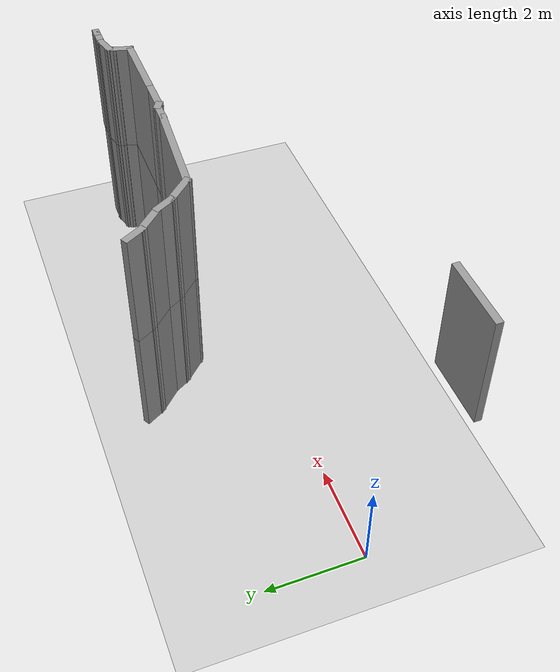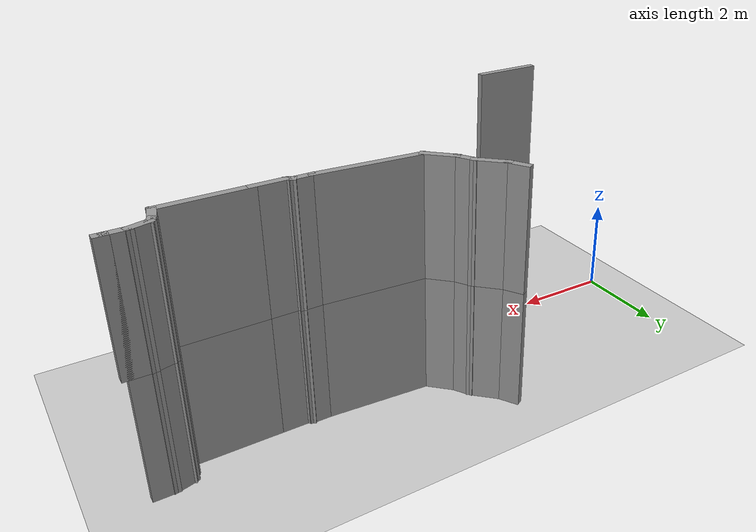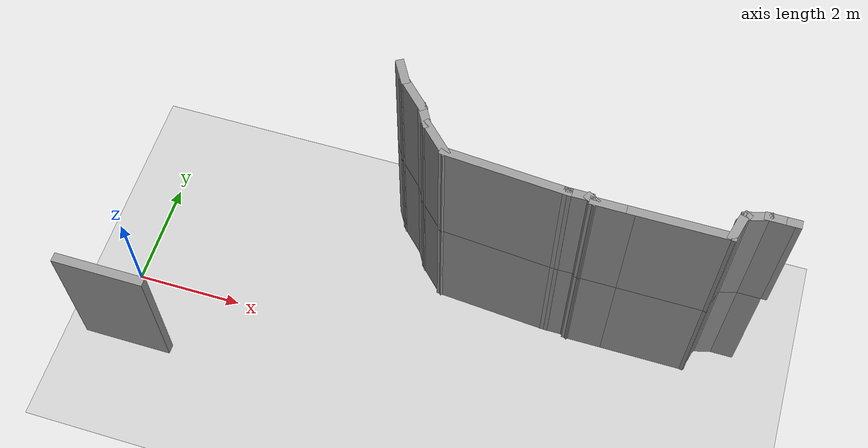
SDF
<sdf version="1.7">
 <world name="default">
  <model name="ground_plane">
   <static>1</static>
   <link name="link">
    <collision name="collision">
     <geometry><plane><normal>0 0 1</normal><size>100 100</size></plane></geometry>
     <surface>
      <contact><collide_bitmask>65535</collide_bitmask></contact>
      <friction><ode><mu>100</mu><mu2>50</mu2></ode></friction>
     </surface>
    </collision>
    <visual name="visual">
     <cast_shadows>0</cast_shadows>
     <geometry><plane><normal>0 0 1</normal><size>100 100</size></plane></geometry>
     <material>
      <script><uri>file://media/materials/scripts/gazebo.material</uri><name>Gazebo/Grey</name></script>
     </material>
    </visual>
   </link>
  </model>
  <model name="EnvDC01">
   <link name="Wall_286">
    <pose>4.70925 7.95684 2.5 0 -0 3.14159</pose>
    <visual name="Wall_286_Visual">
     <pose>0 0 1.25 0 -0 0</pose>
     <geometry><box><size>0.25 0.15 2.5</size></box></geometry>
     <material>
      <script><uri>file://media/materials/scripts/gazebo.material</uri><name>Gazebo/Grey</name></script>
      <ambient>1 1 1 1</ambient>
      <shader type="pixel"/>
     </material>
     <meta><layer>1</layer></meta>
    </visual>
    <collision name="Wall_286_Collision">
     <pose>0 0 1.25 0 -0 0</pose>
     <geometry><box><size>0.25 0.15 2.5</size></box></geometry>
     <surface>
      <friction>
       <ode><mu>1</mu><mu2>1</mu2><fdir1>0 0 0</fdir1><slip1>0</slip1><slip2>0</slip2></ode>
       <torsional>
        <coefficient>1</coefficient>
        <patch_radius>0</patch_radius>
        <surface_radius>0</surface_radius>
        <use_patch_radius>1</use_patch_radius>
        <ode><slip>0</slip></ode>
       </torsional>
      </friction>
      <bounce><restitution_coefficient>0</restitution_coefficient><threshold>1e+06</threshold></bounce>
      <contact>
       <collide_without_contact>0</collide_without_contact>
       <collide_without_contact_bitmask>1</collide_without_contact_bitmask>
       <collide_bitmask>1</collide_bitmask>
       <ode>
        <soft_cfm>0</soft_cfm>
        <soft_erp>0.2</soft_erp>
        <kp>1e+13</kp>
        <kd>1</kd>
        <max_vel>0.01</max_vel>
        <min_depth>0</min_depth>
       </ode>
       <bullet>
        <split_impulse>1</split_impulse>
        <split_impulse_penetration_threshold>-0.01</split_impulse_penetration_threshold>
        <soft_cfm>0</soft_cfm>
        <soft_erp>0.2</soft_erp>
        <kp>1e+13</kp>
        <kd>1</kd>
       </bullet>
      </contact>
     </surface>
    </collision>
   </link>
   <link name="Wall_287">
    <pose>4.48425 7.95684 2.5 0 -0 3.14159</pose>
    <visual name="Wall_287_Visual">
     <pose>0 0 1.25 0 -0 0</pose>
     <geometry><box><size>0.5 0.15 2.5</size></box></geometry>
     <material>
      <script><uri>file://media/materials/scripts/gazebo.material</uri><name>Gazebo/Grey</name></script>
      <ambient>1 1 1 1</ambient>
      <shader type="pixel"/>
     </material>
     <meta><layer>1</layer></meta>
    </visual>
    <collision name="Wall_287_Collision">
     <pose>0 0 1.25 0 -0 0</pose>
     <geometry><box><size>0.5 0.15 2.5</size></box></geometry>
     <surface>
      <friction>
       <ode><mu>1</mu><mu2>1</mu2><fdir1>0 0 0</fdir1><slip1>0</slip1><slip2>0</slip2></ode>
       <torsional>
        <coefficient>1</coefficient>
        <patch_radius>0</patch_radius>
        <surface_radius>0</surface_radius>
        <use_patch_radius>1</use_patch_radius>
        <ode><slip>0</slip></ode>
       </torsional>
      </friction>
      <bounce><restitution_coefficient>0</restitution_coefficient><threshold>1e+06</threshold></bounce>
      <contact>
       <collide_without_contact>0</collide_without_contact>
       <collide_without_contact_bitmask>1</collide_without_contact_bitmask>
       <collide_bitmask>1</collide_bitmask>
       <ode>
        <soft_cfm>0</soft_cfm>
        <soft_erp>0.2</soft_erp>
        <kp>1e+13</kp>
        <kd>1</kd>
        <max_vel>0.01</max_vel>
        <min_depth>0</min_depth>
       </ode>
       <bullet>
        <split_impulse>1</split_impulse>
        <split_impulse_penetration_threshold>-0.01</split_impulse_penetration_threshold>
        <soft_cfm>0</soft_cfm>
        <soft_erp>0.2</soft_erp>
        <kp>1e+13</kp>
        <kd>1</kd>
       </bullet>
      </contact>
     </surface>
    </collision>
   </link>
   <link name="Wall_288">
    <pose>4.14021 7.91155 2.5 0 0 -2.87979</pose>
    <visual name="Wall_288_Visual">
     <pose>0 0 1.25 0 -0 0</pose>
     <geometry><box><size>0.5 0.15 2.5</size></box></geometry>
     <material>
      <script><uri>file://media/materials/scripts/gazebo.material</uri><name>Gazebo/Grey</name></script>
      <ambient>1 1 1 1</ambient>
      <shader type="pixel"/>
     </material>
     <meta><layer>1</layer></meta>
    </visual>
    <collision name="Wall_288_Collision">
     <pose>0 0 1.25 0 -0 0</pose>
     <geometry><box><size>0.5 0.15 2.5</size></box></geometry>
     <surface>
      <friction>
       <ode><mu>1</mu><mu2>1</mu2><fdir1>0 0 0</fdir1><slip1>0</slip1><slip2>0</slip2></ode>
       <torsional>
        <coefficient>1</coefficient>
        <patch_radius>0</patch_radius>
        <surface_radius>0</surface_radius>
        <use_patch_radius>1</use_patch_radius>
        <ode><slip>0</slip></ode>
       </torsional>
      </friction>
      <bounce><restitution_coefficient>0</restitution_coefficient><threshold>1e+06</threshold></bounce>
      <contact>
       <collide_without_contact>0</collide_without_contact>
       <collide_without_contact_bitmask>1</collide_without_contact_bitmask>
       <collide_bitmask>1</collide_bitmask>
       <ode>
        <soft_cfm>0</soft_cfm>
        <soft_erp>0.2</soft_erp>
        <kp>1e+13</kp>
        <kd>1</kd>
        <max_vel>0.01</max_vel>
        <min_depth>0</min_depth>
       </ode>
       <bullet>
        <split_impulse>1</split_impulse>
        <split_impulse_penetration_threshold>-0.01</split_impulse_penetration_threshold>
        <soft_cfm>0</soft_cfm>
        <soft_erp>0.2</soft_erp>
        <kp>1e+13</kp>
        <kd>1</kd>
       </bullet>
      </contact>
     </surface>
    </collision>
   </link>
   <link name="Wall_289">
    <pose>3.94617 7.82295 2.5 0 0 -2.0944</pose>
    <visual name="Wall_289_Visual">
     <pose>0 0 1.25 0 -0 0</pose>
     <geometry><box><size>0.25 0.15 2.5</size></box></geometry>
     <material>
      <script><uri>file://media/materials/scripts/gazebo.material</uri><name>Gazebo/Grey</name></script>
      <ambient>1 1 1 1</ambient>
      <shader type="pixel"/>
     </material>
     <meta><layer>1</layer></meta>
    </visual>
    <collision name="Wall_289_Collision">
     <pose>0 0 1.25 0 -0 0</pose>
     <geometry><box><size>0.25 0.15 2.5</size></box></geometry>
     <surface>
      <friction>
       <ode><mu>1</mu><mu2>1</mu2><fdir1>0 0 0</fdir1><slip1>0</slip1><slip2>0</slip2></ode>
       <torsional>
        <coefficient>1</coefficient>
        <patch_radius>0</patch_radius>
        <surface_radius>0</surface_radius>
        <use_patch_radius>1</use_patch_radius>
        <ode><slip>0</slip></ode>
       </torsional>
      </friction>
      <bounce><restitution_coefficient>0</restitution_coefficient><threshold>1e+06</threshold></bounce>
      <contact>
       <collide_without_contact>0</collide_without_contact>
       <collide_without_contact_bitmask>1</collide_without_contact_bitmask>
       <collide_bitmask>1</collide_bitmask>
       <ode>
        <soft_cfm>0</soft_cfm>
        <soft_erp>0.2</soft_erp>
        <kp>1e+13</kp>
        <kd>1</kd>
        <max_vel>0.01</max_vel>
        <min_depth>0</min_depth>
       </ode>
       <bullet>
        <split_impulse>1</split_impulse>
        <split_impulse_penetration_threshold>-0.01</split_impulse_penetration_threshold>
        <soft_cfm>0</soft_cfm>
        <soft_erp>0.2</soft_erp>
        <kp>1e+13</kp>
        <kd>1</kd>
       </bullet>
      </contact>
     </surface>
    </collision>
   </link>
   <link name="Wall_290">
    <pose>3.87588 7.61061 2.5 0 0 -1.8326</pose>
    <visual name="Wall_290_Visual">
     <pose>0 0 1.25 0 -0 0</pose>
     <geometry><box><size>0.5 0.15 2.5</size></box></geometry>
     <material>
      <script><uri>file://media/materials/scripts/gazebo.material</uri><name>Gazebo/Grey</name></script>
      <ambient>1 1 1 1</ambient>
      <shader type="pixel"/>
     </material>
     <meta><layer>1</layer></meta>
    </visual>
    <collision name="Wall_290_Collision">
     <pose>0 0 1.25 0 -0 0</pose>
     <geometry><box><size>0.5 0.15 2.5</size></box></geometry>
     <surface>
      <friction>
       <ode><mu>1</mu><mu2>1</mu2><fdir1>0 0 0</fdir1><slip1>0</slip1><slip2>0</slip2></ode>
       <torsional>
        <coefficient>1</coefficient>
        <patch_radius>0</patch_radius>
        <surface_radius>0</surface_radius>
        <use_patch_radius>1</use_patch_radius>
        <ode><slip>0</slip></ode>
       </torsional>
      </friction>
      <bounce><restitution_coefficient>0</restitution_coefficient><threshold>1e+06</threshold></bounce>
      <contact>
       <collide_without_contact>0</collide_without_contact>
       <collide_without_contact_bitmask>1</collide_without_contact_bitmask>
       <collide_bitmask>1</collide_bitmask>
       <ode>
        <soft_cfm>0</soft_cfm>
        <soft_erp>0.2</soft_erp>
        <kp>1e+13</kp>
        <kd>1</kd>
        <max_vel>0.01</max_vel>
        <min_depth>0</min_depth>
       </ode>
       <bullet>
        <split_impulse>1</split_impulse>
        <split_impulse_penetration_threshold>-0.01</split_impulse_penetration_threshold>
        <soft_cfm>0</soft_cfm>
        <soft_erp>0.2</soft_erp>
        <kp>1e+13</kp>
        <kd>1</kd>
       </bullet>
      </contact>
     </surface>
    </collision>
   </link>
   <link name="Wall_291">
    <pose>3.03058 7.44158 2.5 0 -0 3.14159</pose>
    <visual name="Wall_291_Visual">
     <pose>0 0 1.25 0 -0 0</pose>
     <geometry><box><size>1.75 0.15 2.5</size></box></geometry>
     <material>
      <script><uri>file://media/materials/scripts/gazebo.material</uri><name>Gazebo/Grey</name></script>
      <ambient>1 1 1 1</ambient>
      <shader type="pixel"/>
     </material>
     <meta><layer>1</layer></meta>
    </visual>
    <collision name="Wall_291_Collision">
     <pose>0 0 1.25 0 -0 0</pose>
     <geometry><box><size>1.75 0.15 2.5</size></box></geometry>
     <surface>
      <friction>
       <ode><mu>1</mu><mu2>1</mu2><fdir1>0 0 0</fdir1><slip1>0</slip1><slip2>0</slip2></ode>
       <torsional>
        <coefficient>1</coefficient>
        <patch_radius>0</patch_radius>
        <surface_radius>0</surface_radius>
        <use_patch_radius>1</use_patch_radius>
        <ode><slip>0</slip></ode>
       </torsional>
      </friction>
      <bounce><restitution_coefficient>0</restitution_coefficient><threshold>1e+06</threshold></bounce>
      <contact>
       <collide_without_contact>0</collide_without_contact>
       <collide_without_contact_bitmask>1</collide_without_contact_bitmask>
       <collide_bitmask>1</collide_bitmask>
       <ode>
        <soft_cfm>0</soft_cfm>
        <soft_erp>0.2</soft_erp>
        <kp>1e+13</kp>
        <kd>1</kd>
        <max_vel>0.01</max_vel>
        <min_depth>0</min_depth>
       </ode>
       <bullet>
        <split_impulse>1</split_impulse>
        <split_impulse_penetration_threshold>-0.01</split_impulse_penetration_threshold>
        <soft_cfm>0</soft_cfm>
        <soft_erp>0.2</soft_erp>
        <kp>1e+13</kp>
        <kd>1</kd>
       </bullet>
      </contact>
     </surface>
    </collision>
   </link>
   <link name="Wall_292">
    <pose>1.93058 7.44158 2.5 0 -0 3.14159</pose>
    <visual name="Wall_292_Visual">
     <pose>0 0 1.25 0 -0 0</pose>
     <geometry><box><size>0.75 0.15 2.5</size></box></geometry>
     <material>
      <script><uri>file://media/materials/scripts/gazebo.material</uri><name>Gazebo/Grey</name></script>
      <ambient>1 1 1 1</ambient>
      <shader type="pixel"/>
     </material>
     <meta><layer>1</layer></meta>
    </visual>
    <collision name="Wall_292_Collision">
     <pose>0 0 1.25 0 -0 0</pose>
     <geometry><box><size>0.75 0.15 2.5</size></box></geometry>
     <surface>
      <friction>
       <ode><mu>1</mu><mu2>1</mu2><fdir1>0 0 0</fdir1><slip1>0</slip1><slip2>0</slip2></ode>
       <torsional>
        <coefficient>1</coefficient>
        <patch_radius>0</patch_radius>
        <surface_radius>0</surface_radius>
        <use_patch_radius>1</use_patch_radius>
        <ode><slip>0</slip></ode>
       </torsional>
      </friction>
      <bounce><restitution_coefficient>0</restitution_coefficient><threshold>1e+06</threshold></bounce>
      <contact>
       <collide_without_contact>0</collide_without_contact>
       <collide_without_contact_bitmask>1</collide_without_contact_bitmask>
       <collide_bitmask>1</collide_bitmask>
       <ode>
        <soft_cfm>0</soft_cfm>
        <soft_erp>0.2</soft_erp>
        <kp>1e+13</kp>
        <kd>1</kd>
        <max_vel>0.01</max_vel>
        <min_depth>0</min_depth>
       </ode>
       <bullet>
        <split_impulse>1</split_impulse>
        <split_impulse_penetration_threshold>-0.01</split_impulse_penetration_threshold>
        <soft_cfm>0</soft_cfm>
        <soft_erp>0.2</soft_erp>
        <kp>1e+13</kp>
        <kd>1</kd>
       </bullet>
      </contact>
     </surface>
    </collision>
   </link>
   <link name="Wall_293">
    <pose>1.58728 7.46658 2.5 0 -0 2.61799</pose>
    <visual name="Wall_293_Visual">
     <pose>0 0 1.25 0 -0 0</pose>
     <geometry><box><size>0.25 0.15 2.5</size></box></geometry>
     <material>
      <script><uri>file://media/materials/scripts/gazebo.material</uri><name>Gazebo/Grey</name></script>
      <ambient>1 1 1 1</ambient>
      <shader type="pixel"/>
     </material>
     <meta><layer>1</layer></meta>
    </visual>
    <collision name="Wall_293_Collision">
     <pose>0 0 1.25 0 -0 0</pose>
     <geometry><box><size>0.25 0.15 2.5</size></box></geometry>
     <surface>
      <friction>
       <ode><mu>1</mu><mu2>1</mu2><fdir1>0 0 0</fdir1><slip1>0</slip1><slip2>0</slip2></ode>
       <torsional>
        <coefficient>1</coefficient>
        <patch_radius>0</patch_radius>
        <surface_radius>0</surface_radius>
        <use_patch_radius>1</use_patch_radius>
        <ode><slip>0</slip></ode>
       </torsional>
      </friction>
      <bounce><restitution_coefficient>0</restitution_coefficient><threshold>1e+06</threshold></bounce>
      <contact>
       <collide_without_contact>0</collide_without_contact>
       <collide_without_contact_bitmask>1</collide_without_contact_bitmask>
       <collide_bitmask>1</collide_bitmask>
       <ode>
        <soft_cfm>0</soft_cfm>
        <soft_erp>0.2</soft_erp>
        <kp>1e+13</kp>
        <kd>1</kd>
        <max_vel>0.01</max_vel>
        <min_depth>0</min_depth>
       </ode>
       <bullet>
        <split_impulse>1</split_impulse>
        <split_impulse_penetration_threshold>-0.01</split_impulse_penetration_threshold>
        <soft_cfm>0</soft_cfm>
        <soft_erp>0.2</soft_erp>
        <kp>1e+13</kp>
        <kd>1</kd>
       </bullet>
      </contact>
     </surface>
    </collision>
   </link>
   <link name="Wall_294">
    <pose>1.36898 7.49158 2.5 0 -0 3.14159</pose>
    <visual name="Wall_294_Visual">
     <pose>0 0 1.25 0 -0 0</pose>
     <geometry><box><size>0.5 0.15 2.5</size></box></geometry>
     <material>
      <script><uri>file://media/materials/scripts/gazebo.material</uri><name>Gazebo/Grey</name></script>
      <ambient>1 1 1 1</ambient>
      <shader type="pixel"/>
     </material>
     <meta><layer>1</layer></meta>
    </visual>
    <collision name="Wall_294_Collision">
     <pose>0 0 1.25 0 -0 0</pose>
     <geometry><box><size>0.5 0.15 2.5</size></box></geometry>
     <surface>
      <friction>
       <ode><mu>1</mu><mu2>1</mu2><fdir1>0 0 0</fdir1><slip1>0</slip1><slip2>0</slip2></ode>
       <torsional>
        <coefficient>1</coefficient>
        <patch_radius>0</patch_radius>
        <surface_radius>0</surface_radius>
        <use_patch_radius>1</use_patch_radius>
        <ode><slip>0</slip></ode>
       </torsional>
      </friction>
      <bounce><restitution_coefficient>0</restitution_coefficient><threshold>1e+06</threshold></bounce>
      <contact>
       <collide_without_contact>0</collide_without_contact>
       <collide_without_contact_bitmask>1</collide_without_contact_bitmask>
       <collide_bitmask>1</collide_bitmask>
       <ode>
        <soft_cfm>0</soft_cfm>
        <soft_erp>0.2</soft_erp>
        <kp>1e+13</kp>
        <kd>1</kd>
        <max_vel>0.01</max_vel>
        <min_depth>0</min_depth>
       </ode>
       <bullet>
        <split_impulse>1</split_impulse>
        <split_impulse_penetration_threshold>-0.01</split_impulse_penetration_threshold>
        <soft_cfm>0</soft_cfm>
        <soft_erp>0.2</soft_erp>
        <kp>1e+13</kp>
        <kd>1</kd>
       </bullet>
      </contact>
     </surface>
    </collision>
   </link>
   <link name="Wall_295">
    <pose>0.154204 7.56922 2.5 0 -0 3.06706</pose>
    <visual name="Wall_295_Visual">
     <pose>0 0 1.25 0 -0 0</pose>
     <geometry><box><size>2.23535 0.15 2.5</size></box></geometry>
     <material>
      <script><uri>file://media/materials/scripts/gazebo.material</uri><name>Gazebo/Grey</name></script>
      <ambient>1 1 1 1</ambient>
      <shader type="pixel"/>
     </material>
     <meta><layer>1</layer></meta>
    </visual>
    <collision name="Wall_295_Collision">
     <pose>0 0 1.25 0 -0 0</pose>
     <geometry><box><size>2.23535 0.15 2.5</size></box></geometry>
     <surface>
      <friction>
       <ode><mu>1</mu><mu2>1</mu2><fdir1>0 0 0</fdir1><slip1>0</slip1><slip2>0</slip2></ode>
       <torsional>
        <coefficient>1</coefficient>
        <patch_radius>0</patch_radius>
        <surface_radius>0</surface_radius>
        <use_patch_radius>1</use_patch_radius>
        <ode><slip>0</slip></ode>
       </torsional>
      </friction>
      <bounce><restitution_coefficient>0</restitution_coefficient><threshold>1e+06</threshold></bounce>
      <contact>
       <collide_without_contact>0</collide_without_contact>
       <collide_without_contact_bitmask>1</collide_without_contact_bitmask>
       <collide_bitmask>1</collide_bitmask>
       <ode>
        <soft_cfm>0</soft_cfm>
        <soft_erp>0.2</soft_erp>
        <kp>1e+13</kp>
        <kd>1</kd>
        <max_vel>0.01</max_vel>
        <min_depth>0</min_depth>
       </ode>
       <bullet>
        <split_impulse>1</split_impulse>
        <split_impulse_penetration_threshold>-0.01</split_impulse_penetration_threshold>
        <soft_cfm>0</soft_cfm>
        <soft_erp>0.2</soft_erp>
        <kp>1e+13</kp>
        <kd>1</kd>
       </bullet>
      </contact>
     </surface>
    </collision>
   </link>
   <link name="Wall_296">
    <pose>-1.09771 7.859 2.5 0 -0 2.35619</pose>
    <visual name="Wall_296_Visual">
     <pose>0 0 1.25 0 -0 0</pose>
     <geometry><box><size>0.75 0.15 2.5</size></box></geometry>
     <material>
      <script><uri>file://media/materials/scripts/gazebo.material</uri><name>Gazebo/Grey</name></script>
      <ambient>1 1 1 1</ambient>
      <shader type="pixel"/>
     </material>
     <meta><layer>1</layer></meta>
    </visual>
    <collision name="Wall_296_Collision">
     <pose>0 0 1.25 0 -0 0</pose>
     <geometry><box><size>0.75 0.15 2.5</size></box></geometry>
     <surface>
      <friction>
       <ode><mu>1</mu><mu2>1</mu2><fdir1>0 0 0</fdir1><slip1>0</slip1><slip2>0</slip2></ode>
       <torsional>
        <coefficient>1</coefficient>
        <patch_radius>0</patch_radius>
        <surface_radius>0</surface_radius>
        <use_patch_radius>1</use_patch_radius>
        <ode><slip>0</slip></ode>
       </torsional>
      </friction>
      <bounce><restitution_coefficient>0</restitution_coefficient><threshold>1e+06</threshold></bounce>
      <contact>
       <collide_without_contact>0</collide_without_contact>
       <collide_without_contact_bitmask>1</collide_without_contact_bitmask>
       <collide_bitmask>1</collide_bitmask>
       <ode>
        <soft_cfm>0</soft_cfm>
        <soft_erp>0.2</soft_erp>
        <kp>1e+13</kp>
        <kd>1</kd>
        <max_vel>0.01</max_vel>
        <min_depth>0</min_depth>
       </ode>
       <bullet>
        <split_impulse>1</split_impulse>
        <split_impulse_penetration_threshold>-0.01</split_impulse_penetration_threshold>
        <soft_cfm>0</soft_cfm>
        <soft_erp>0.2</soft_erp>
        <kp>1e+13</kp>
        <kd>1</kd>
       </bullet>
      </contact>
     </surface>
    </collision>
   </link>
   <link name="Wall_297">
    <pose>-1.39734 8.22269 2.5 0 -0 2.0944</pose>
    <visual name="Wall_297_Visual">
     <pose>0 0 1.25 0 -0 0</pose>
     <geometry><box><size>0.5 0.15 2.5</size></box></geometry>
     <material>
      <script><uri>file://media/materials/scripts/gazebo.material</uri><name>Gazebo/Grey</name></script>
      <ambient>1 1 1 1</ambient>
      <shader type="pixel"/>
     </material>
     <meta><layer>1</layer></meta>
    </visual>
    <collision name="Wall_297_Collision">
     <pose>0 0 1.25 0 -0 0</pose>
     <geometry><box><size>0.5 0.15 2.5</size></box></geometry>
     <surface>
      <friction>
       <ode><mu>1</mu><mu2>1</mu2><fdir1>0 0 0</fdir1><slip1>0</slip1><slip2>0</slip2></ode>
       <torsional>
        <coefficient>1</coefficient>
        <patch_radius>0</patch_radius>
        <surface_radius>0</surface_radius>
        <use_patch_radius>1</use_patch_radius>
        <ode><slip>0</slip></ode>
       </torsional>
      </friction>
      <bounce><restitution_coefficient>0</restitution_coefficient><threshold>1e+06</threshold></bounce>
      <contact>
       <collide_without_contact>0</collide_without_contact>
       <collide_without_contact_bitmask>1</collide_without_contact_bitmask>
       <collide_bitmask>1</collide_bitmask>
       <ode>
        <soft_cfm>0</soft_cfm>
        <soft_erp>0.2</soft_erp>
        <kp>1e+13</kp>
        <kd>1</kd>
        <max_vel>0.01</max_vel>
        <min_depth>0</min_depth>
       </ode>
       <bullet>
        <split_impulse>1</split_impulse>
        <split_impulse_penetration_threshold>-0.01</split_impulse_penetration_threshold>
        <soft_cfm>0</soft_cfm>
        <soft_erp>0.2</soft_erp>
        <kp>1e+13</kp>
        <kd>1</kd>
       </bullet>
      </contact>
     </surface>
    </collision>
   </link>
   <link name="Wall_298">
    <pose>-1.69697 8.58637 2.5 0 -0 2.35619</pose>
    <visual name="Wall_298_Visual">
     <pose>0 0 1.25 0 -0 0</pose>
     <geometry><box><size>0.75 0.15 2.5</size></box></geometry>
     <material>
      <script><uri>file://media/materials/scripts/gazebo.material</uri><name>Gazebo/Grey</name></script>
      <ambient>1 1 1 1</ambient>
      <shader type="pixel"/>
     </material>
     <meta><layer>1</layer></meta>
    </visual>
    <collision name="Wall_298_Collision">
     <pose>0 0 1.25 0 -0 0</pose>
     <geometry><box><size>0.75 0.15 2.5</size></box></geometry>
     <surface>
      <friction>
       <ode><mu>1</mu><mu2>1</mu2><fdir1>0 0 0</fdir1><slip1>0</slip1><slip2>0</slip2></ode>
       <torsional>
        <coefficient>1</coefficient>
        <patch_radius>0</patch_radius>
        <surface_radius>0</surface_radius>
        <use_patch_radius>1</use_patch_radius>
        <ode><slip>0</slip></ode>
       </torsional>
      </friction>
      <bounce><restitution_coefficient>0</restitution_coefficient><threshold>1e+06</threshold></bounce>
      <contact>
       <collide_without_contact>0</collide_without_contact>
       <collide_without_contact_bitmask>1</collide_without_contact_bitmask>
       <collide_bitmask>1</collide_bitmask>
       <ode>
        <soft_cfm>0</soft_cfm>
        <soft_erp>0.2</soft_erp>
        <kp>1e+13</kp>
        <kd>1</kd>
        <max_vel>0.01</max_vel>
        <min_depth>0</min_depth>
       </ode>
       <bullet>
        <split_impulse>1</split_impulse>
        <split_impulse_penetration_threshold>-0.01</split_impulse_penetration_threshold>
        <soft_cfm>0</soft_cfm>
        <soft_erp>0.2</soft_erp>
        <kp>1e+13</kp>
        <kd>1</kd>
       </bullet>
      </contact>
     </surface>
    </collision>
   </link>
   <link name="Wall_299">
    <pose>-1.9966 8.95006 2.5 0 -0 2.0944</pose>
    <visual name="Wall_299_Visual">
     <pose>0 0 1.25 0 -0 0</pose>
     <geometry><box><size>0.5 0.15 2.5</size></box></geometry>
     <material>
      <script><uri>file://media/materials/scripts/gazebo.material</uri><name>Gazebo/Grey</name></script>
      <ambient>1 1 1 1</ambient>
      <shader type="pixel"/>
     </material>
     <meta><layer>1</layer></meta>
    </visual>
    <collision name="Wall_299_Collision">
     <pose>0 0 1.25 0 -0 0</pose>
     <geometry><box><size>0.5 0.15 2.5</size></box></geometry>
     <surface>
      <friction>
       <ode><mu>1</mu><mu2>1</mu2><fdir1>0 0 0</fdir1><slip1>0</slip1><slip2>0</slip2></ode>
       <torsional>
        <coefficient>1</coefficient>
        <patch_radius>0</patch_radius>
        <surface_radius>0</surface_radius>
        <use_patch_radius>1</use_patch_radius>
        <ode><slip>0</slip></ode>
       </torsional>
      </friction>
      <bounce><restitution_coefficient>0</restitution_coefficient><threshold>1e+06</threshold></bounce>
      <contact>
       <collide_without_contact>0</collide_without_contact>
       <collide_without_contact_bitmask>1</collide_without_contact_bitmask>
       <collide_bitmask>1</collide_bitmask>
       <ode>
        <soft_cfm>0</soft_cfm>
        <soft_erp>0.2</soft_erp>
        <kp>1e+13</kp>
        <kd>1</kd>
        <max_vel>0.01</max_vel>
        <min_depth>0</min_depth>
       </ode>
       <bullet>
        <split_impulse>1</split_impulse>
        <split_impulse_penetration_threshold>-0.01</split_impulse_penetration_threshold>
        <soft_cfm>0</soft_cfm>
        <soft_erp>0.2</soft_erp>
        <kp>1e+13</kp>
        <kd>1</kd>
       </bullet>
      </contact>
     </surface>
    </collision>
   </link>
   <link name="Wall_355">
    <pose>-5.33682 4.06947 2.5 0 -0 3.14159</pose>
    <visual name="Wall_355_Visual">
     <pose>0 0 1.25 0 -0 0</pose>
     <geometry><box><size>1.5 0.15 2.5</size></box></geometry>
     <material>
      <script><uri>file://media/materials/scripts/gazebo.material</uri><name>Gazebo/Grey</name></script>
      <ambient>1 1 1 1</ambient>
      <shader type="pixel"/>
     </material>
     <meta><layer>1</layer></meta>
    </visual>
    <collision name="Wall_355_Collision">
     <pose>0 0 1.25 0 -0 0</pose>
     <geometry><box><size>1.5 0.15 2.5</size></box></geometry>
     <surface>
      <friction>
       <ode><mu>1</mu><mu2>1</mu2><fdir1>0 0 0</fdir1><slip1>0</slip1><slip2>0</slip2></ode>
       <torsional>
        <coefficient>1</coefficient>
        <patch_radius>0</patch_radius>
        <surface_radius>0</surface_radius>
        <use_patch_radius>1</use_patch_radius>
        <ode><slip>0</slip></ode>
       </torsional>
      </friction>
      <bounce><restitution_coefficient>0</restitution_coefficient><threshold>1e+06</threshold></bounce>
      <contact>
       <collide_without_contact>0</collide_without_contact>
       <collide_without_contact_bitmask>1</collide_without_contact_bitmask>
       <collide_bitmask>1</collide_bitmask>
       <ode>
        <soft_cfm>0</soft_cfm>
        <soft_erp>0.2</soft_erp>
        <kp>1e+13</kp>
        <kd>1</kd>
        <max_vel>0.01</max_vel>
        <min_depth>0</min_depth>
       </ode>
       <bullet>
        <split_impulse>1</split_impulse>
        <split_impulse_penetration_threshold>-0.01</split_impulse_penetration_threshold>
        <soft_cfm>0</soft_cfm>
        <soft_erp>0.2</soft_erp>
        <kp>1e+13</kp>
        <kd>1</kd>
       </bullet>
      </contact>
     </surface>
    </collision>
   </link>
   <link name="Wall_75">
    <pose>4.48424 7.95684 0 0 -0 3.14159</pose>
    <visual name="Wall_75_Visual">
     <pose>0 0 1.25 0 -0 0</pose>
     <geometry><box><size>0.5 0.15 2.5</size></box></geometry>
     <material>
      <script><uri>file://media/materials/scripts/gazebo.material</uri><name>Gazebo/Grey</name></script>
      <ambient>1 1 1 1</ambient>
      <shader type="pixel"/>
     </material>
     <meta><layer>0</layer></meta>
    </visual>
    <collision name="Wall_75_Collision">
     <pose>0 0 1.25 0 -0 0</pose>
     <geometry><box><size>0.5 0.15 2.5</size></box></geometry>
     <surface>
      <friction>
       <ode><mu>1</mu><mu2>1</mu2><fdir1>0 0 0</fdir1><slip1>0</slip1><slip2>0</slip2></ode>
       <torsional>
        <coefficient>1</coefficient>
        <patch_radius>0</patch_radius>
        <surface_radius>0</surface_radius>
        <use_patch_radius>1</use_patch_radius>
        <ode><slip>0</slip></ode>
       </torsional>
      </friction>
      <bounce><restitution_coefficient>0</restitution_coefficient><threshold>1e+06</threshold></bounce>
      <contact>
       <collide_without_contact>0</collide_without_contact>
       <collide_without_contact_bitmask>1</collide_without_contact_bitmask>
       <collide_bitmask>1</collide_bitmask>
       <ode>
        <soft_cfm>0</soft_cfm>
        <soft_erp>0.2</soft_erp>
        <kp>1e+13</kp>
        <kd>1</kd>
        <max_vel>0.01</max_vel>
        <min_depth>0</min_depth>
       </ode>
       <bullet>
        <split_impulse>1</split_impulse>
        <split_impulse_penetration_threshold>-0.01</split_impulse_penetration_threshold>
        <soft_cfm>0</soft_cfm>
        <soft_erp>0.2</soft_erp>
        <kp>1e+13</kp>
        <kd>1</kd>
       </bullet>
      </contact>
     </surface>
    </collision>
   </link>
   <link name="Wall_76">
    <pose>4.14021 7.91155 0 0 0 -2.87979</pose>
    <visual name="Wall_76_Visual">
     <pose>0 0 1.25 0 -0 0</pose>
     <geometry><box><size>0.5 0.15 2.5</size></box></geometry>
     <material>
      <script><uri>file://media/materials/scripts/gazebo.material</uri><name>Gazebo/Grey</name></script>
      <ambient>1 1 1 1</ambient>
      <shader type="pixel"/>
     </material>
     <meta><layer>0</layer></meta>
    </visual>
    <collision name="Wall_76_Collision">
     <pose>0 0 1.25 0 -0 0</pose>
     <geometry><box><size>0.5 0.15 2.5</size></box></geometry>
     <surface>
      <friction>
       <ode><mu>1</mu><mu2>1</mu2><fdir1>0 0 0</fdir1><slip1>0</slip1><slip2>0</slip2></ode>
       <torsional>
        <coefficient>1</coefficient>
        <patch_radius>0</patch_radius>
        <surface_radius>0</surface_radius>
        <use_patch_radius>1</use_patch_radius>
        <ode><slip>0</slip></ode>
       </torsional>
      </friction>
      <bounce><restitution_coefficient>0</restitution_coefficient><threshold>1e+06</threshold></bounce>
      <contact>
       <collide_without_contact>0</collide_without_contact>
       <collide_without_contact_bitmask>1</collide_without_contact_bitmask>
       <collide_bitmask>1</collide_bitmask>
       <ode>
        <soft_cfm>0</soft_cfm>
        <soft_erp>0.2</soft_erp>
        <kp>1e+13</kp>
        <kd>1</kd>
        <max_vel>0.01</max_vel>
        <min_depth>0</min_depth>
       </ode>
       <bullet>
        <split_impulse>1</split_impulse>
        <split_impulse_penetration_threshold>-0.01</split_impulse_penetration_threshold>
        <soft_cfm>0</soft_cfm>
        <soft_erp>0.2</soft_erp>
        <kp>1e+13</kp>
        <kd>1</kd>
       </bullet>
      </contact>
     </surface>
    </collision>
   </link>
   <link name="Wall_77">
    <pose>3.94617 7.82295 0 0 0 -2.0944</pose>
    <visual name="Wall_77_Visual">
     <pose>0 0 1.25 0 -0 0</pose>
     <geometry><box><size>0.25 0.15 2.5</size></box></geometry>
     <material>
      <script><uri>file://media/materials/scripts/gazebo.material</uri><name>Gazebo/Grey</name></script>
      <ambient>1 1 1 1</ambient>
      <shader type="pixel"/>
     </material>
     <meta><layer>0</layer></meta>
    </visual>
    <collision name="Wall_77_Collision">
     <pose>0 0 1.25 0 -0 0</pose>
     <geometry><box><size>0.25 0.15 2.5</size></box></geometry>
     <surface>
      <friction>
       <ode><mu>1</mu><mu2>1</mu2><fdir1>0 0 0</fdir1><slip1>0</slip1><slip2>0</slip2></ode>
       <torsional>
        <coefficient>1</coefficient>
        <patch_radius>0</patch_radius>
        <surface_radius>0</surface_radius>
        <use_patch_radius>1</use_patch_radius>
        <ode><slip>0</slip></ode>
       </torsional>
      </friction>
      <bounce><restitution_coefficient>0</restitution_coefficient><threshold>1e+06</threshold></bounce>
      <contact>
       <collide_without_contact>0</collide_without_contact>
       <collide_without_contact_bitmask>1</collide_without_contact_bitmask>
       <collide_bitmask>1</collide_bitmask>
       <ode>
        <soft_cfm>0</soft_cfm>
        <soft_erp>0.2</soft_erp>
        <kp>1e+13</kp>
        <kd>1</kd>
        <max_vel>0.01</max_vel>
        <min_depth>0</min_depth>
       </ode>
       <bullet>
        <split_impulse>1</split_impulse>
        <split_impulse_penetration_threshold>-0.01</split_impulse_penetration_threshold>
        <soft_cfm>0</soft_cfm>
        <soft_erp>0.2</soft_erp>
        <kp>1e+13</kp>
        <kd>1</kd>
       </bullet>
      </contact>
     </surface>
    </collision>
   </link>
   <link name="Wall_78">
    <pose>3.87588 7.61061 0 0 0 -1.8326</pose>
    <visual name="Wall_78_Visual">
     <pose>0 0 1.25 0 -0 0</pose>
     <geometry><box><size>0.5 0.15 2.5</size></box></geometry>
     <material>
      <script><uri>file://media/materials/scripts/gazebo.material</uri><name>Gazebo/Grey</name></script>
      <ambient>1 1 1 1</ambient>
      <shader type="pixel"/>
     </material>
     <meta><layer>0</layer></meta>
    </visual>
    <collision name="Wall_78_Collision">
     <pose>0 0 1.25 0 -0 0</pose>
     <geometry><box><size>0.5 0.15 2.5</size></box></geometry>
     <surface>
      <friction>
       <ode><mu>1</mu><mu2>1</mu2><fdir1>0 0 0</fdir1><slip1>0</slip1><slip2>0</slip2></ode>
       <torsional>
        <coefficient>1</coefficient>
        <patch_radius>0</patch_radius>
        <surface_radius>0</surface_radius>
        <use_patch_radius>1</use_patch_radius>
        <ode><slip>0</slip></ode>
       </torsional>
      </friction>
      <bounce><restitution_coefficient>0</restitution_coefficient><threshold>1e+06</threshold></bounce>
      <contact>
       <collide_without_contact>0</collide_without_contact>
       <collide_without_contact_bitmask>1</collide_without_contact_bitmask>
       <collide_bitmask>1</collide_bitmask>
       <ode>
        <soft_cfm>0</soft_cfm>
        <soft_erp>0.2</soft_erp>
        <kp>1e+13</kp>
        <kd>1</kd>
        <max_vel>0.01</max_vel>
        <min_depth>0</min_depth>
       </ode>
       <bullet>
        <split_impulse>1</split_impulse>
        <split_impulse_penetration_threshold>-0.01</split_impulse_penetration_threshold>
        <soft_cfm>0</soft_cfm>
        <soft_erp>0.2</soft_erp>
        <kp>1e+13</kp>
        <kd>1</kd>
       </bullet>
      </contact>
     </surface>
    </collision>
   </link>
   <link name="Wall_79">
    <pose>3.03058 7.44158 0 0 -0 3.14159</pose>
    <visual name="Wall_79_Visual">
     <pose>0 0 1.25 0 -0 0</pose>
     <geometry><box><size>1.75 0.15 2.5</size></box></geometry>
     <material>
      <script><uri>file://media/materials/scripts/gazebo.material</uri><name>Gazebo/Grey</name></script>
      <ambient>1 1 1 1</ambient>
      <shader type="pixel"/>
     </material>
     <meta><layer>0</layer></meta>
    </visual>
    <collision name="Wall_79_Collision">
     <pose>0 0 1.25 0 -0 0</pose>
     <geometry><box><size>1.75 0.15 2.5</size></box></geometry>
     <surface>
      <friction>
       <ode><mu>1</mu><mu2>1</mu2><fdir1>0 0 0</fdir1><slip1>0</slip1><slip2>0</slip2></ode>
       <torsional>
        <coefficient>1</coefficient>
        <patch_radius>0</patch_radius>
        <surface_radius>0</surface_radius>
        <use_patch_radius>1</use_patch_radius>
        <ode><slip>0</slip></ode>
       </torsional>
      </friction>
      <bounce><restitution_coefficient>0</restitution_coefficient><threshold>1e+06</threshold></bounce>
      <contact>
       <collide_without_contact>0</collide_without_contact>
       <collide_without_contact_bitmask>1</collide_without_contact_bitmask>
       <collide_bitmask>1</collide_bitmask>
       <ode>
        <soft_cfm>0</soft_cfm>
        <soft_erp>0.2</soft_erp>
        <kp>1e+13</kp>
        <kd>1</kd>
        <max_vel>0.01</max_vel>
        <min_depth>0</min_depth>
       </ode>
       <bullet>
        <split_impulse>1</split_impulse>
        <split_impulse_penetration_threshold>-0.01</split_impulse_penetration_threshold>
        <soft_cfm>0</soft_cfm>
        <soft_erp>0.2</soft_erp>
        <kp>1e+13</kp>
        <kd>1</kd>
       </bullet>
      </contact>
     </surface>
    </collision>
   </link>
   <link name="Wall_80">
    <pose>1.93058 7.44158 0 0 -0 3.14159</pose>
    <visual name="Wall_80_Visual">
     <pose>0 0 1.25 0 -0 0</pose>
     <geometry><box><size>0.75 0.15 2.5</size></box></geometry>
     <material>
      <script><uri>file://media/materials/scripts/gazebo.material</uri><name>Gazebo/Grey</name></script>
      <ambient>1 1 1 1</ambient>
      <shader type="pixel"/>
     </material>
     <meta><layer>0</layer></meta>
    </visual>
    <collision name="Wall_80_Collision">
     <pose>0 0 1.25 0 -0 0</pose>
     <geometry><box><size>0.75 0.15 2.5</size></box></geometry>
     <surface>
      <friction>
       <ode><mu>1</mu><mu2>1</mu2><fdir1>0 0 0</fdir1><slip1>0</slip1><slip2>0</slip2></ode>
       <torsional>
        <coefficient>1</coefficient>
        <patch_radius>0</patch_radius>
        <surface_radius>0</surface_radius>
        <use_patch_radius>1</use_patch_radius>
        <ode><slip>0</slip></ode>
       </torsional>
      </friction>
      <bounce><restitution_coefficient>0</restitution_coefficient><threshold>1e+06</threshold></bounce>
      <contact>
       <collide_without_contact>0</collide_without_contact>
       <collide_without_contact_bitmask>1</collide_without_contact_bitmask>
       <collide_bitmask>1</collide_bitmask>
       <ode>
        <soft_cfm>0</soft_cfm>
        <soft_erp>0.2</soft_erp>
        <kp>1e+13</kp>
        <kd>1</kd>
        <max_vel>0.01</max_vel>
        <min_depth>0</min_depth>
       </ode>
       <bullet>
        <split_impulse>1</split_impulse>
        <split_impulse_penetration_threshold>-0.01</split_impulse_penetration_threshold>
        <soft_cfm>0</soft_cfm>
        <soft_erp>0.2</soft_erp>
        <kp>1e+13</kp>
        <kd>1</kd>
       </bullet>
      </contact>
     </surface>
    </collision>
   </link>
   <link name="Wall_82">
    <pose>1.58728 7.46658 0 0 -0 2.61799</pose>
    <visual name="Wall_82_Visual">
     <pose>0 0 1.25 0 -0 0</pose>
     <geometry><box><size>0.25 0.15 2.5</size></box></geometry>
     <material>
      <script><uri>file://media/materials/scripts/gazebo.material</uri><name>Gazebo/Grey</name></script>
      <ambient>1 1 1 1</ambient>
      <shader type="pixel"/>
     </material>
     <meta><layer>0</layer></meta>
    </visual>
    <collision name="Wall_82_Collision">
     <pose>0 0 1.25 0 -0 0</pose>
     <geometry><box><size>0.25 0.15 2.5</size></box></geometry>
     <surface>
      <friction>
       <ode><mu>1</mu><mu2>1</mu2><fdir1>0 0 0</fdir1><slip1>0</slip1><slip2>0</slip2></ode>
       <torsional>
        <coefficient>1</coefficient>
        <patch_radius>0</patch_radius>
        <surface_radius>0</surface_radius>
        <use_patch_radius>1</use_patch_radius>
        <ode><slip>0</slip></ode>
       </torsional>
      </friction>
      <bounce><restitution_coefficient>0</restitution_coefficient><threshold>1e+06</threshold></bounce>
      <contact>
       <collide_without_contact>0</collide_without_contact>
       <collide_without_contact_bitmask>1</collide_without_contact_bitmask>
       <collide_bitmask>1</collide_bitmask>
       <ode>
        <soft_cfm>0</soft_cfm>
        <soft_erp>0.2</soft_erp>
        <kp>1e+13</kp>
        <kd>1</kd>
        <max_vel>0.01</max_vel>
        <min_depth>0</min_depth>
       </ode>
       <bullet>
        <split_impulse>1</split_impulse>
        <split_impulse_penetration_threshold>-0.01</split_impulse_penetration_threshold>
        <soft_cfm>0</soft_cfm>
        <soft_erp>0.2</soft_erp>
        <kp>1e+13</kp>
        <kd>1</kd>
       </bullet>
      </contact>
     </surface>
    </collision>
   </link>
   <link name="Wall_83">
    <pose>1.36898 7.49158 0 0 -0 3.14159</pose>
    <visual name="Wall_83_Visual">
     <pose>0 0 1.25 0 -0 0</pose>
     <geometry><box><size>0.5 0.15 2.5</size></box></geometry>
     <material>
      <script><uri>file://media/materials/scripts/gazebo.material</uri><name>Gazebo/Grey</name></script>
      <ambient>1 1 1 1</ambient>
      <shader type="pixel"/>
     </material>
     <meta><layer>0</layer></meta>
    </visual>
    <collision name="Wall_83_Collision">
     <pose>0 0 1.25 0 -0 0</pose>
     <geometry><box><size>0.5 0.15 2.5</size></box></geometry>
     <surface>
      <friction>
       <ode><mu>1</mu><mu2>1</mu2><fdir1>0 0 0</fdir1><slip1>0</slip1><slip2>0</slip2></ode>
       <torsional>
        <coefficient>1</coefficient>
        <patch_radius>0</patch_radius>
        <surface_radius>0</surface_radius>
        <use_patch_radius>1</use_patch_radius>
        <ode><slip>0</slip></ode>
       </torsional>
      </friction>
      <bounce><restitution_coefficient>0</restitution_coefficient><threshold>1e+06</threshold></bounce>
      <contact>
       <collide_without_contact>0</collide_without_contact>
       <collide_without_contact_bitmask>1</collide_without_contact_bitmask>
       <collide_bitmask>1</collide_bitmask>
       <ode>
        <soft_cfm>0</soft_cfm>
        <soft_erp>0.2</soft_erp>
        <kp>1e+13</kp>
        <kd>1</kd>
        <max_vel>0.01</max_vel>
        <min_depth>0</min_depth>
       </ode>
       <bullet>
        <split_impulse>1</split_impulse>
        <split_impulse_penetration_threshold>-0.01</split_impulse_penetration_threshold>
        <soft_cfm>0</soft_cfm>
        <soft_erp>0.2</soft_erp>
        <kp>1e+13</kp>
        <kd>1</kd>
       </bullet>
      </contact>
     </surface>
    </collision>
   </link>
   <link name="Wall_84">
    <pose>0.154204 7.56922 0 0 -0 3.06706</pose>
    <visual name="Wall_84_Visual">
     <pose>0 0 1.25 0 -0 0</pose>
     <geometry><box><size>2.23535 0.15 2.5</size></box></geometry>
     <material>
      <script><uri>file://media/materials/scripts/gazebo.material</uri><name>Gazebo/Grey</name></script>
      <ambient>1 1 1 1</ambient>
      <shader type="pixel"/>
     </material>
     <meta><layer>0</layer></meta>
    </visual>
    <collision name="Wall_84_Collision">
     <pose>0 0 1.25 0 -0 0</pose>
     <geometry><box><size>2.23535 0.15 2.5</size></box></geometry>
     <surface>
      <friction>
       <ode><mu>1</mu><mu2>1</mu2><fdir1>0 0 0</fdir1><slip1>0</slip1><slip2>0</slip2></ode>
       <torsional>
        <coefficient>1</coefficient>
        <patch_radius>0</patch_radius>
        <surface_radius>0</surface_radius>
        <use_patch_radius>1</use_patch_radius>
        <ode><slip>0</slip></ode>
       </torsional>
      </friction>
      <bounce><restitution_coefficient>0</restitution_coefficient><threshold>1e+06</threshold></bounce>
      <contact>
       <collide_without_contact>0</collide_without_contact>
       <collide_without_contact_bitmask>1</collide_without_contact_bitmask>
       <collide_bitmask>1</collide_bitmask>
       <ode>
        <soft_cfm>0</soft_cfm>
        <soft_erp>0.2</soft_erp>
        <kp>1e+13</kp>
        <kd>1</kd>
        <max_vel>0.01</max_vel>
        <min_depth>0</min_depth>
       </ode>
       <bullet>
        <split_impulse>1</split_impulse>
        <split_impulse_penetration_threshold>-0.01</split_impulse_penetration_threshold>
        <soft_cfm>0</soft_cfm>
        <soft_erp>0.2</soft_erp>
        <kp>1e+13</kp>
        <kd>1</kd>
       </bullet>
      </contact>
     </surface>
    </collision>
   </link>
   <link name="Wall_85">
    <pose>-1.09771 7.859 0 0 -0 2.35619</pose>
    <visual name="Wall_85_Visual">
     <pose>0 0 1.25 0 -0 0</pose>
     <geometry><box><size>0.75 0.15 2.5</size></box></geometry>
     <material>
      <script><uri>file://media/materials/scripts/gazebo.material</uri><name>Gazebo/Grey</name></script>
      <ambient>1 1 1 1</ambient>
      <shader type="pixel"/>
     </material>
     <meta><layer>0</layer></meta>
    </visual>
    <collision name="Wall_85_Collision">
     <pose>0 0 1.25 0 -0 0</pose>
     <geometry><box><size>0.75 0.15 2.5</size></box></geometry>
     <surface>
      <friction>
       <ode><mu>1</mu><mu2>1</mu2><fdir1>0 0 0</fdir1><slip1>0</slip1><slip2>0</slip2></ode>
       <torsional>
        <coefficient>1</coefficient>
        <patch_radius>0</patch_radius>
        <surface_radius>0</surface_radius>
        <use_patch_radius>1</use_patch_radius>
        <ode><slip>0</slip></ode>
       </torsional>
      </friction>
      <bounce><restitution_coefficient>0</restitution_coefficient><threshold>1e+06</threshold></bounce>
      <contact>
       <collide_without_contact>0</collide_without_contact>
       <collide_without_contact_bitmask>1</collide_without_contact_bitmask>
       <collide_bitmask>1</collide_bitmask>
       <ode>
        <soft_cfm>0</soft_cfm>
        <soft_erp>0.2</soft_erp>
        <kp>1e+13</kp>
        <kd>1</kd>
        <max_vel>0.01</max_vel>
        <min_depth>0</min_depth>
       </ode>
       <bullet>
        <split_impulse>1</split_impulse>
        <split_impulse_penetration_threshold>-0.01</split_impulse_penetration_threshold>
        <soft_cfm>0</soft_cfm>
        <soft_erp>0.2</soft_erp>
        <kp>1e+13</kp>
        <kd>1</kd>
       </bullet>
      </contact>
     </surface>
    </collision>
   </link>
   <link name="Wall_86">
    <pose>-1.39734 8.22269 0 0 -0 2.0944</pose>
    <visual name="Wall_86_Visual">
     <pose>0 0 1.25 0 -0 0</pose>
     <geometry><box><size>0.5 0.15 2.5</size></box></geometry>
     <material>
      <script><uri>file://media/materials/scripts/gazebo.material</uri><name>Gazebo/Grey</name></script>
      <ambient>1 1 1 1</ambient>
      <shader type="pixel"/>
     </material>
     <meta><layer>0</layer></meta>
    </visual>
    <collision name="Wall_86_Collision">
     <pose>0 0 1.25 0 -0 0</pose>
     <geometry><box><size>0.5 0.15 2.5</size></box></geometry>
     <surface>
      <friction>
       <ode><mu>1</mu><mu2>1</mu2><fdir1>0 0 0</fdir1><slip1>0</slip1><slip2>0</slip2></ode>
       <torsional>
        <coefficient>1</coefficient>
        <patch_radius>0</patch_radius>
        <surface_radius>0</surface_radius>
        <use_patch_radius>1</use_patch_radius>
        <ode><slip>0</slip></ode>
       </torsional>
      </friction>
      <bounce><restitution_coefficient>0</restitution_coefficient><threshold>1e+06</threshold></bounce>
      <contact>
       <collide_without_contact>0</collide_without_contact>
       <collide_without_contact_bitmask>1</collide_without_contact_bitmask>
       <collide_bitmask>1</collide_bitmask>
       <ode>
        <soft_cfm>0</soft_cfm>
        <soft_erp>0.2</soft_erp>
        <kp>1e+13</kp>
        <kd>1</kd>
        <max_vel>0.01</max_vel>
        <min_depth>0</min_depth>
       </ode>
       <bullet>
        <split_impulse>1</split_impulse>
        <split_impulse_penetration_threshold>-0.01</split_impulse_penetration_threshold>
        <soft_cfm>0</soft_cfm>
        <soft_erp>0.2</soft_erp>
        <kp>1e+13</kp>
        <kd>1</kd>
       </bullet>
      </contact>
     </surface>
    </collision>
   </link>
   <link name="Wall_87">
    <pose>-1.69697 8.58637 0 0 -0 2.35619</pose>
    <visual name="Wall_87_Visual">
     <pose>0 0 1.25 0 -0 0</pose>
     <geometry><box><size>0.75 0.15 2.5</size></box></geometry>
     <material>
      <script><uri>file://media/materials/scripts/gazebo.material</uri><name>Gazebo/Grey</name></script>
      <ambient>1 1 1 1</ambient>
      <shader type="pixel"/>
     </material>
     <meta><layer>0</layer></meta>
    </visual>
    <collision name="Wall_87_Collision">
     <pose>0 0 1.25 0 -0 0</pose>
     <geometry><box><size>0.75 0.15 2.5</size></box></geometry>
     <surface>
      <friction>
       <ode><mu>1</mu><mu2>1</mu2><fdir1>0 0 0</fdir1><slip1>0</slip1><slip2>0</slip2></ode>
       <torsional>
        <coefficient>1</coefficient>
        <patch_radius>0</patch_radius>
        <surface_radius>0</surface_radius>
        <use_patch_radius>1</use_patch_radius>
        <ode><slip>0</slip></ode>
       </torsional>
      </friction>
      <bounce><restitution_coefficient>0</restitution_coefficient><threshold>1e+06</threshold></bounce>
      <contact>
       <collide_without_contact>0</collide_without_contact>
       <collide_without_contact_bitmask>1</collide_without_contact_bitmask>
       <collide_bitmask>1</collide_bitmask>
       <ode>
        <soft_cfm>0</soft_cfm>
        <soft_erp>0.2</soft_erp>
        <kp>1e+13</kp>
        <kd>1</kd>
        <max_vel>0.01</max_vel>
        <min_depth>0</min_depth>
       </ode>
       <bullet>
        <split_impulse>1</split_impulse>
        <split_impulse_penetration_threshold>-0.01</split_impulse_penetration_threshold>
        <soft_cfm>0</soft_cfm>
        <soft_erp>0.2</soft_erp>
        <kp>1e+13</kp>
        <kd>1</kd>
       </bullet>
      </contact>
     </surface>
    </collision>
   </link>
   <link name="Wall_88">
    <pose>-1.9966 8.95006 0 0 -0 2.0944</pose>
    <visual name="Wall_88_Visual">
     <pose>0 0 1.25 0 -0 0</pose>
     <geometry><box><size>0.5 0.15 2.5</size></box></geometry>
     <material>
      <script><uri>file://media/materials/scripts/gazebo.material</uri><name>Gazebo/Grey</name></script>
      <ambient>1 1 1 1</ambient>
      <shader type="pixel"/>
     </material>
     <meta><layer>0</layer></meta>
    </visual>
    <collision name="Wall_88_Collision">
     <pose>0 0 1.25 0 -0 0</pose>
     <geometry><box><size>0.5 0.15 2.5</size></box></geometry>
     <surface>
      <friction>
       <ode><mu>1</mu><mu2>1</mu2><fdir1>0 0 0</fdir1><slip1>0</slip1><slip2>0</slip2></ode>
       <torsional>
        <coefficient>1</coefficient>
        <patch_radius>0</patch_radius>
        <surface_radius>0</surface_radius>
        <use_patch_radius>1</use_patch_radius>
        <ode><slip>0</slip></ode>
       </torsional>
      </friction>
      <bounce><restitution_coefficient>0</restitution_coefficient><threshold>1e+06</threshold></bounce>
      <contact>
       <collide_without_contact>0</collide_without_contact>
       <collide_without_contact_bitmask>1</collide_without_contact_bitmask>
       <collide_bitmask>1</collide_bitmask>
       <ode>
        <soft_cfm>0</soft_cfm>
        <soft_erp>0.2</soft_erp>
        <kp>1e+13</kp>
        <kd>1</kd>
        <max_vel>0.01</max_vel>
        <min_depth>0</min_depth>
       </ode>
       <bullet>
        <split_impulse>1</split_impulse>
        <split_impulse_penetration_threshold>-0.01</split_impulse_penetration_threshold>
        <soft_cfm>0</soft_cfm>
        <soft_erp>0.2</soft_erp>
        <kp>1e+13</kp>
        <kd>1</kd>
       </bullet>
      </contact>
     </surface>
    </collision>
   </link>
   <static>1</static>
   <pose>6.55365 -6.2466 0 0 -0 0</pose>
  </model>
 </world>
</sdf>
